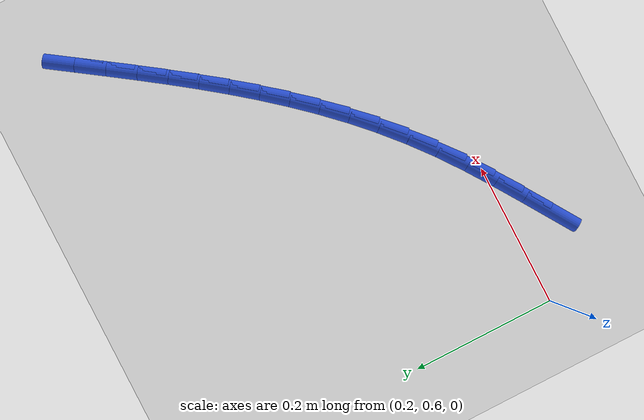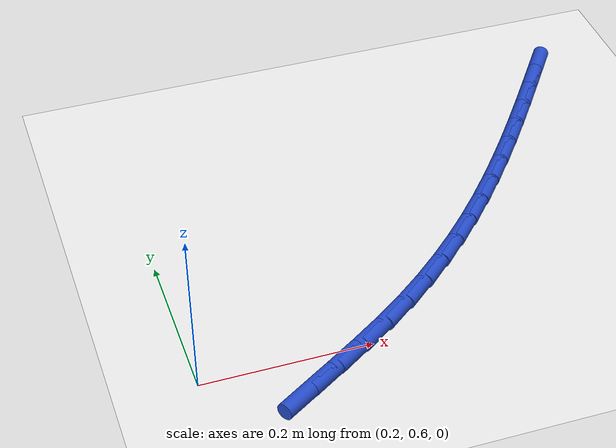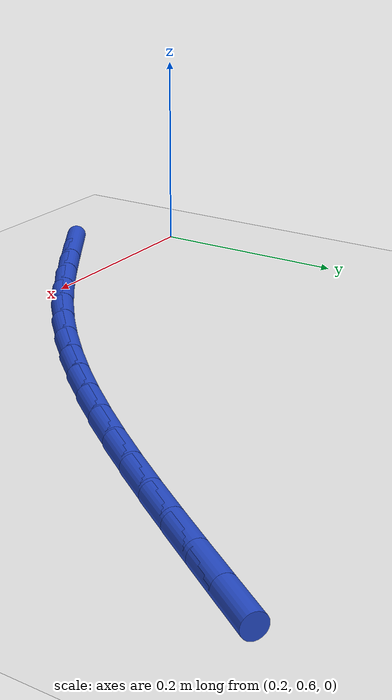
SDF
<sdf version="1.6">
 <world name="default">
  <model name="ground_plane">
   <static>1</static>
   <link name="link">
    <collision name="collision">
     <geometry><plane><normal>0 0 1</normal><size>100 100</size></plane></geometry>
     <surface><friction><ode><mu>100</mu><mu2>50</mu2></ode></friction></surface>
    </collision>
    <visual name="visual">
     <cast_shadows>0</cast_shadows>
     <geometry><plane><normal>0 0 1</normal><size>100 100</size></plane></geometry>
     <material>
      <script><uri>file://media/materials/scripts/gazebo.material</uri><name>Gazebo/WhiteGlow</name></script>
     </material>
    </visual>
   </link>
  </model>
  <model name="line">
   <link name="link_16">
    <pose>0.30817770095951946 0.5446410392821716 0.01 0 1.57 0.5751556409642943</pose>
    <collision name="collision">
     <geometry><cylinder><radius>0.01</radius><length>0.08</length></cylinder></geometry>
    </collision>
    <visual name="visual">
     <material>
      <script><name>Gazebo/Blue</name><uri>file://media/materials/scripts/gazebo.material</uri></script>
     </material>
     <geometry><cylinder><radius>0.01</radius><length>0.08</length></cylinder></geometry>
    </visual>
   </link>
   <link name="link_17">
    <pose>0.34496614218676896 0.5684897541004724 0.01 0 1.57 0.5845682902340378</pose>
    <collision name="collision">
     <geometry><cylinder><radius>0.01</radius><length>0.08</length></cylinder></geometry>
    </collision>
    <visual name="visual">
     <material>
      <script><name>Gazebo/Blue</name><uri>file://media/materials/scripts/gazebo.material</uri></script>
     </material>
     <geometry><cylinder><radius>0.01</radius><length>0.08</length></cylinder></geometry>
    </visual>
   </link>
   <link name="link_18">
    <pose>0.3813994168360437 0.5925982823844337 0.01 0 1.57 0.6060888026734863</pose>
    <collision name="collision">
     <geometry><cylinder><radius>0.01</radius><length>0.08</length></cylinder></geometry>
    </collision>
    <visual name="visual">
     <material>
      <script><name>Gazebo/Blue</name><uri>file://media/materials/scripts/gazebo.material</uri></script>
     </material>
     <geometry><cylinder><radius>0.01</radius><length>0.08</length></cylinder></geometry>
    </visual>
   </link>
   <link name="link_19">
    <pose>0.4169961855438056 0.6172708632264658 0.01 0 1.57 0.6403506833495011</pose>
    <collision name="collision">
     <geometry><cylinder><radius>0.01</radius><length>0.08</length></cylinder></geometry>
    </collision>
    <visual name="visual">
     <material>
      <script><name>Gazebo/Blue</name><uri>file://media/materials/scripts/gazebo.material</uri></script>
     </material>
     <geometry><cylinder><radius>0.01</radius><length>0.08</length></cylinder></geometry>
    </visual>
   </link>
   <link name="link_20">
    <pose>0.4512751258212564 0.6428117261935644 0.01 0 1.57 0.6850768095033232</pose>
    <collision name="collision">
     <geometry><cylinder><radius>0.01</radius><length>0.08</length></cylinder></geometry>
    </collision>
    <visual name="visual">
     <material>
      <script><name>Gazebo/Blue</name><uri>file://media/materials/scripts/gazebo.material</uri></script>
     </material>
     <geometry><cylinder><radius>0.01</radius><length>0.08</length></cylinder></geometry>
    </visual>
   </link>
   <link name="link_21">
    <pose>0.48388112932498306 0.669453855780227 0.01 0 1.57 0.7297223873508099</pose>
    <collision name="collision">
     <geometry><cylinder><radius>0.01</radius><length>0.08</length></cylinder></geometry>
    </collision>
    <visual name="visual">
     <material>
      <script><name>Gazebo/Blue</name><uri>file://media/materials/scripts/gazebo.material</uri></script>
     </material>
     <geometry><cylinder><radius>0.01</radius><length>0.08</length></cylinder></geometry>
    </visual>
   </link>
   <link name="link_22">
    <pose>0.5148888054719619 0.6971876703811003 0.01 0 1.57 0.7714979246180685</pose>
    <collision name="collision">
     <geometry><cylinder><radius>0.01</radius><length>0.08</length></cylinder></geometry>
    </collision>
    <visual name="visual">
     <material>
      <script><name>Gazebo/Blue</name><uri>file://media/materials/scripts/gazebo.material</uri></script>
     </material>
     <geometry><cylinder><radius>0.01</radius><length>0.08</length></cylinder></geometry>
    </visual>
   </link>
   <link name="link_23">
    <pose>0.5444641343517383 0.7259520116822805 0.01 0 1.57 0.8099397963355663</pose>
    <collision name="collision">
     <geometry><cylinder><radius>0.01</radius><length>0.08</length></cylinder></geometry>
    </collision>
    <visual name="visual">
     <material>
      <script><name>Gazebo/Blue</name><uri>file://media/materials/scripts/gazebo.material</uri></script>
     </material>
     <geometry><cylinder><radius>0.01</radius><length>0.08</length></cylinder></geometry>
    </visual>
   </link>
   <link name="link_24">
    <pose>0.5727730960538581 0.7556857213698646 0.01 0 1.57 0.8446772178276227</pose>
    <collision name="collision">
     <geometry><cylinder><radius>0.01</radius><length>0.08</length></cylinder></geometry>
    </collision>
    <visual name="visual">
     <material>
      <script><name>Gazebo/Blue</name><uri>file://media/materials/scripts/gazebo.material</uri></script>
     </material>
     <geometry><cylinder><radius>0.01</radius><length>0.08</length></cylinder></geometry>
    </visual>
   </link>
   <link name="link_25">
    <pose>0.5999816706678666 0.7863276411299488 0.01 0 1.57 0.8754331827966756</pose>
    <collision name="collision">
     <geometry><cylinder><radius>0.01</radius><length>0.08</length></cylinder></geometry>
    </collision>
    <visual name="visual">
     <material>
      <script><name>Gazebo/Blue</name><uri>file://media/materials/scripts/gazebo.material</uri></script>
     </material>
     <geometry><cylinder><radius>0.01</radius><length>0.08</length></cylinder></geometry>
    </visual>
   </link>
   <link name="link_26">
    <pose>0.6262558382833097 0.81781661264863 0.01 0 1.57 0.9020187629937836</pose>
    <collision name="collision">
     <geometry><cylinder><radius>0.01</radius><length>0.08</length></cylinder></geometry>
    </collision>
    <visual name="visual">
     <material>
      <script><name>Gazebo/Blue</name><uri>file://media/materials/scripts/gazebo.material</uri></script>
     </material>
     <geometry><cylinder><radius>0.01</radius><length>0.08</length></cylinder></geometry>
    </visual>
   </link>
   <link name="link_27">
    <pose>0.6517615789897324 0.8500914776120047 0.01 0 1.57 0.9243230417049163</pose>
    <collision name="collision">
     <geometry><cylinder><radius>0.01</radius><length>0.08</length></cylinder></geometry>
    </collision>
    <visual name="visual">
     <material>
      <script><name>Gazebo/Blue</name><uri>file://media/materials/scripts/gazebo.material</uri></script>
     </material>
     <geometry><cylinder><radius>0.01</radius><length>0.08</length></cylinder></geometry>
    </visual>
   </link>
   <link name="link_28">
    <pose>0.6766648728766808 0.8830910777061692 0.01 0 1.57 0.942300937306241</pose>
    <collision name="collision">
     <geometry><cylinder><radius>0.01</radius><length>0.08</length></cylinder></geometry>
    </collision>
    <visual name="visual">
     <material>
      <script><name>Gazebo/Blue</name><uri>file://media/materials/scripts/gazebo.material</uri></script>
     </material>
     <geometry><cylinder><radius>0.01</radius><length>0.08</length></cylinder></geometry>
    </visual>
   </link>
   <link name="link_29">
    <pose>0.7011317000337002 0.9167542546172204 0.01 0 1.57 0.9559607906340881</pose>
    <collision name="collision">
     <geometry><cylinder><radius>0.01</radius><length>0.08</length></cylinder></geometry>
    </collision>
    <visual name="visual">
     <material>
      <script><name>Gazebo/Blue</name><uri>file://media/materials/scripts/gazebo.material</uri></script>
     </material>
     <geometry><cylinder><radius>0.01</radius><length>0.08</length></cylinder></geometry>
    </visual>
   </link>
   <link name="link_30">
    <pose>0.7253280405503364 0.9510198500312548 0.01 0 1.57 0.9653530486492283</pose>
    <collision name="collision">
     <geometry><cylinder><radius>0.01</radius><length>0.08</length></cylinder></geometry>
    </collision>
    <visual name="visual">
     <material>
      <script><name>Gazebo/Blue</name><uri>file://media/materials/scripts/gazebo.material</uri></script>
     </material>
     <geometry><cylinder><radius>0.01</radius><length>0.08</length></cylinder></geometry>
    </visual>
   </link>
   <link name="link_31">
    <pose>0.7494198745161348 0.985826705634369 0.01 0 1.57 0.9705608360738294</pose>
    <collision name="collision">
     <geometry><cylinder><radius>0.01</radius><length>0.08</length></cylinder></geometry>
    </collision>
    <visual name="visual">
     <material>
      <script><name>Gazebo/Blue</name><uri>file://media/materials/scripts/gazebo.material</uri></script>
     </material>
     <geometry><cylinder><radius>0.01</radius><length>0.08</length></cylinder></geometry>
    </visual>
   </link>
   <link name="link_32">
    <pose>0.7735731820206411 1.02111366311266 0.01 0 1.57 0.9716927556164991</pose>
    <collision name="collision">
     <geometry><cylinder><radius>0.01</radius><length>0.08</length></cylinder></geometry>
    </collision>
    <visual name="visual">
     <material>
      <script><name>Gazebo/Blue</name><uri>file://media/materials/scripts/gazebo.material</uri></script>
     </material>
     <geometry><cylinder><radius>0.01</radius><length>0.08</length></cylinder></geometry>
    </visual>
   </link>
  </model>
 </world>
</sdf>
